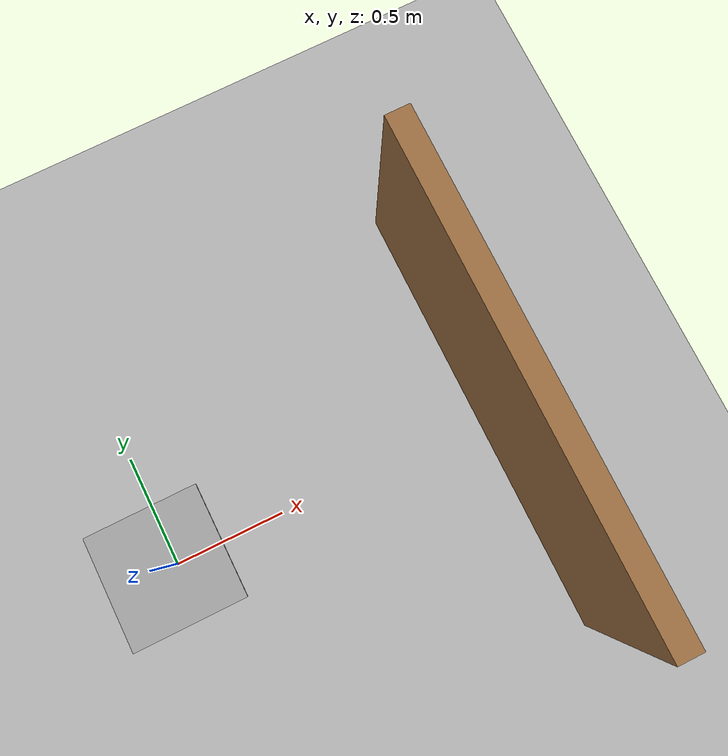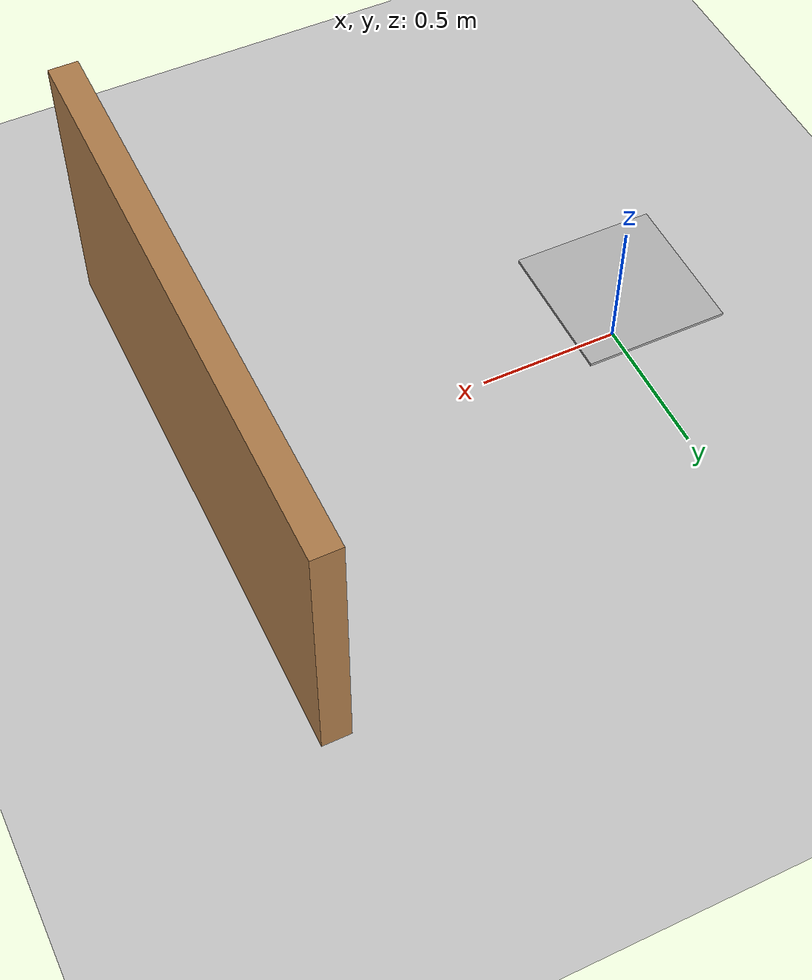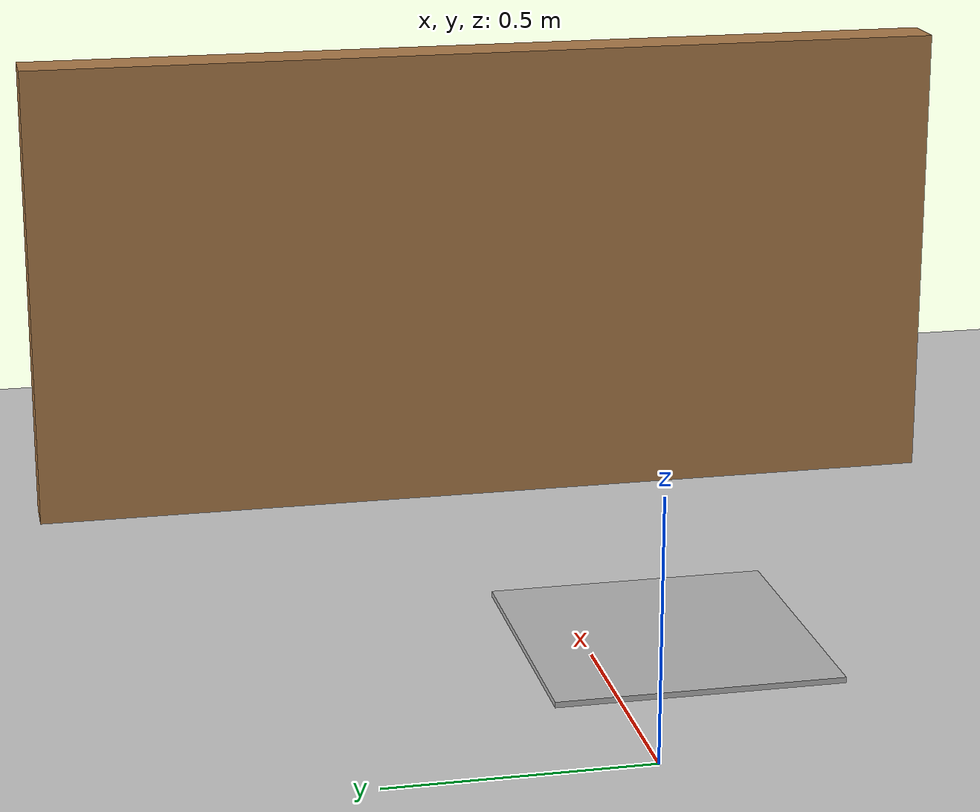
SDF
<?xml version="1.0" ?>
<sdf version="1.6">
  <world name="disturbance_test_world">

    <!-- Physics: ODE, 200 Hz for accurate IMU simulation -->
    <physics name="default_physics" default="0" type="ode">
      <max_step_size>0.001</max_step_size>
      <real_time_factor>1</real_time_factor>
      <real_time_update_rate>1000</real_time_update_rate>
      <ode>
        <solver>
          <type>quick</type>
          <iters>150</iters>
          <sor>1.400000</sor>
        </solver>
        <constraints>
          <cfm>0</cfm>
          <erp>0.2</erp>
          <contact_max_correcting_vel>2000</contact_max_correcting_vel>
          <contact_surface_layer>0.01000</contact_surface_layer>
        </constraints>
      </ode>
    </physics>

    <!-- Lighting -->
    <include>
      <uri>model://sun</uri>
    </include>

    <!-- Ground plane -->
    <include>
      <uri>model://ground_plane</uri>
    </include>

    <!-- Ambient light -->
    <scene>
      <ambient>0.6 0.6 0.6 1</ambient>
      <background>0.15 0.15 0.2 1</background>
      <shadows>true</shadows>
    </scene>

    <!-- ── Test Obstacle: Wall for disturbance ─────────────────────────── -->
    <model name="test_wall">
      <static>true</static>
      <pose>1.5 0 0.5 0 0 0</pose>
      <link name="wall_link">
        <visual name="wall_visual">
          <geometry>
            <box><size>0.1 2.0 1.0</size></box>
          </geometry>
          <material>
            <script>
              <name>Gazebo/WoodFloor</name>
            </script>
          </material>
        </visual>
        <collision name="wall_collision">
          <geometry>
            <box><size>0.1 2.0 1.0</size></box>
          </geometry>
        </collision>
      </link>
    </model>

    <!-- ── Platform for robot to stand on ───────────────────────────────── -->
    <model name="robot_platform">
      <static>true</static>
      <pose>0 0 0.245 0 0 0</pose>
      <link name="platform_link">
        <visual name="platform_visual">
          <geometry>
            <box><size>0.5 0.5 0.01</size></box>
          </geometry>
          <material>
            <script>
              <name>Gazebo/Metal</name>
            </script>
          </material>
        </visual>
        <collision name="platform_collision">
          <geometry>
            <box><size>0.5 0.5 0.01</size></box>
          </geometry>
        </collision>
      </link>
    </model>

    <!-- ── Camera for better view ────────────────────────────────────────── -->
    <gui fullscreen="0">
      <camera name="user_camera">
        <pose>2.5 -2.5 1.5 0 0.3 2.35</pose>
        <view_controller>orbit</view_controller>
      </camera>
    </gui>

  </world>
</sdf>
